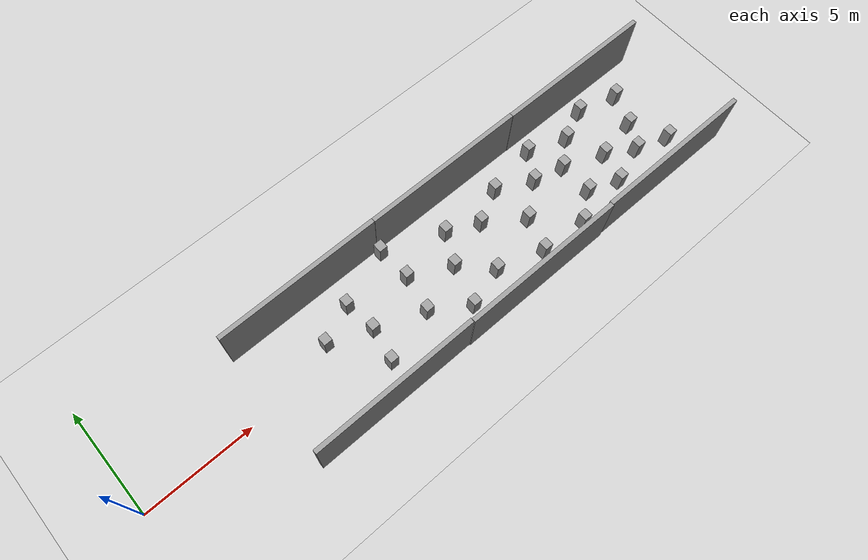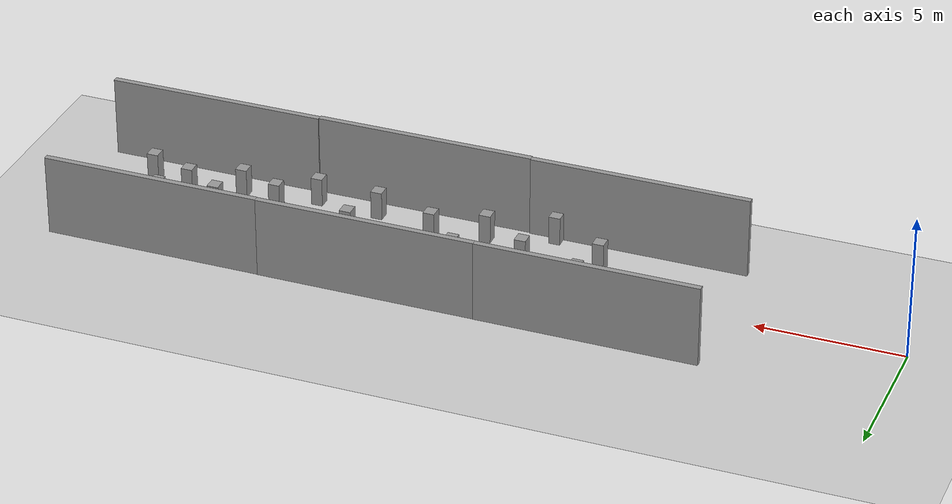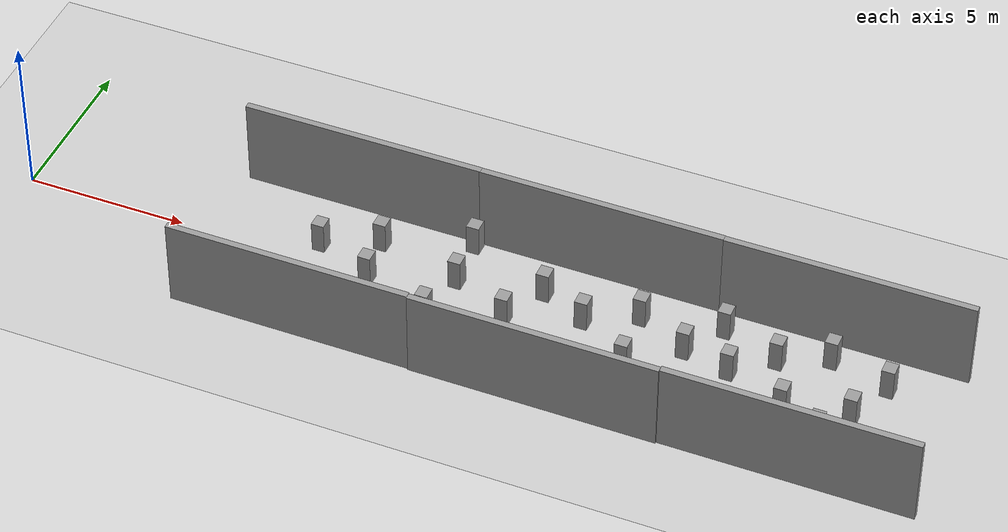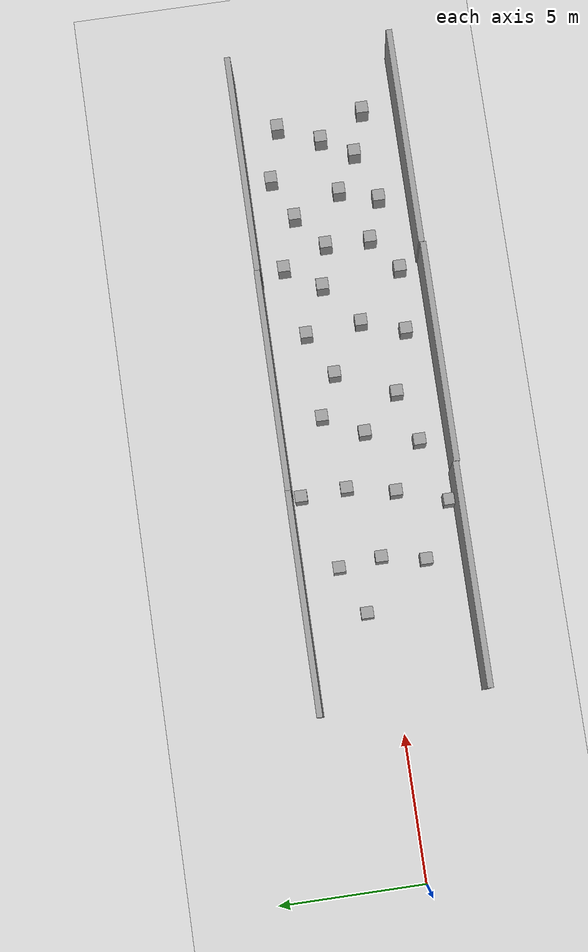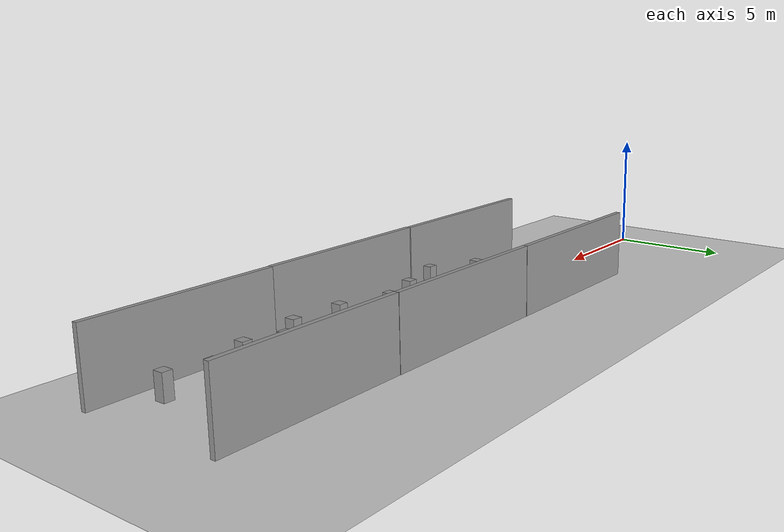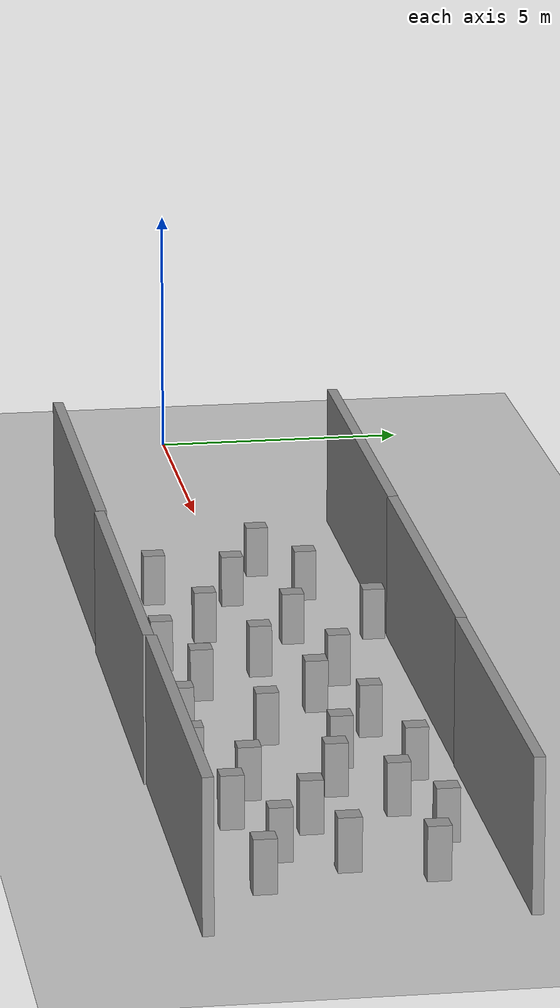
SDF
<sdf version="1.10">
 <world name="obstacle_corridor">
  <model name="ground_plane">
   <static>true</static>
   <link name="link">
    <collision name="collision">
     <geometry><plane><normal>0 0 1</normal><size>100 100</size></plane></geometry>
     <surface>
      <friction><ode><mu>1000</mu><mu2>1000</mu2><slip1>0</slip1><slip2>0</slip2></ode></friction>
     </surface>
    </collision>
    <visual name="visual">
     <cast_shadows>false</cast_shadows>
     <geometry><plane><normal>0 0 1</normal><size>100 100</size></plane></geometry>
     <material>
      <script><uri>file://media/materials/scripts/gazebo.material</uri><name>Gazebo/Grey</name></script>
     </material>
    </visual>
    <inertial>
     <mass>1</mass>
     <inertia><ixx>1</ixx><ixy>0</ixy><ixz>0</ixz><iyy>1</iyy><iyz>0</iyz><izz>1</izz></inertia>
    </inertial>
   </link>
  </model>
  <model name="grey_wall">
   <static>true</static>
   <link name="link">
    <pose>0 0 1.3999999999999999 0 0 0</pose>
    <collision name="collision">
     <geometry><box><size>7.5 0.20000000000000001 2.7999999999999998</size></box></geometry>
    </collision>
    <visual name="visual">
     <cast_shadows>false</cast_shadows>
     <geometry><box><size>7.5 0.20000000000000001 2.7999999999999998</size></box></geometry>
     <material>
      <script><name>Gazebo/Grey</name><uri>file://media/materials/scripts/gazebo.material</uri></script>
     </material>
    </visual>
    <velocity_decay><linear>0</linear><angular>0</angular></velocity_decay>
    <inertial>
     <mass>1</mass>
     <inertia><ixx>1</ixx><ixy>0</ixy><ixz>0</ixz><iyy>1</iyy><iyz>0</iyz><izz>1</izz></inertia>
    </inertial>
   </link>
   <pose>17.187099456787109 2.7045242786407471 0 0 0 0</pose>
   <static>true</static>
  </model>
  <model name="grey_wall_0">
   <static>true</static>
   <link name="link">
    <pose>0 0 1.3999999999999999 0 0 0</pose>
    <collision name="collision">
     <geometry><box><size>7.5 0.20000000000000001 2.7999999999999998</size></box></geometry>
    </collision>
    <visual name="visual">
     <cast_shadows>false</cast_shadows>
     <geometry><box><size>7.5 0.20000000000000001 2.7999999999999998</size></box></geometry>
     <material>
      <script><name>Gazebo/Grey</name><uri>file://media/materials/scripts/gazebo.material</uri></script>
     </material>
    </visual>
    <velocity_decay><linear>0</linear><angular>0</angular></velocity_decay>
    <inertial>
     <mass>1</mass>
     <inertia><ixx>1</ixx><ixy>0</ixy><ixz>0</ixz><iyy>1</iyy><iyz>0</iyz><izz>1</izz></inertia>
    </inertial>
   </link>
   <pose>17.363399505615234 -2.9447300434112549 0 0 0 0</pose>
   <static>true</static>
  </model>
  <model name="grey_wall_clone_1">
   <static>true</static>
   <link name="link">
    <pose>0 0 1.3999999999999999 0 0 0</pose>
    <collision name="collision">
     <geometry><box><size>7.5 0.20000000000000001 2.7999999999999998</size></box></geometry>
    </collision>
    <visual name="visual">
     <cast_shadows>false</cast_shadows>
     <geometry><box><size>7.5 0.20000000000000001 2.7999999999999998</size></box></geometry>
     <material>
      <script><name>Gazebo/Grey</name><uri>file://media/materials/scripts/gazebo.material</uri></script>
     </material>
    </visual>
    <velocity_decay><linear>0</linear><angular>0</angular></velocity_decay>
    <inertial>
     <mass>1</mass>
     <inertia><ixx>1</ixx><ixy>0</ixy><ixz>0</ixz><iyy>1</iyy><iyz>0</iyz><izz>1</izz></inertia>
    </inertial>
   </link>
   <pose>9.8578472137451172 -2.9056301116943359 0 0 0 0</pose>
   <static>true</static>
  </model>
  <model name="grey_wall_clone_2">
   <static>true</static>
   <link name="link">
    <pose>0 0 1.3999999999999999 0 0 0</pose>
    <collision name="collision">
     <geometry><box><size>7.5 0.20000000000000001 2.7999999999999998</size></box></geometry>
    </collision>
    <visual name="visual">
     <cast_shadows>false</cast_shadows>
     <geometry><box><size>7.5 0.20000000000000001 2.7999999999999998</size></box></geometry>
     <material>
      <script><name>Gazebo/Grey</name><uri>file://media/materials/scripts/gazebo.material</uri></script>
     </material>
    </visual>
    <velocity_decay><linear>0</linear><angular>0</angular></velocity_decay>
    <inertial>
     <mass>1</mass>
     <inertia><ixx>1</ixx><ixy>0</ixy><ixz>0</ixz><iyy>1</iyy><iyz>0</iyz><izz>1</izz></inertia>
    </inertial>
   </link>
   <pose>9.7113351821899414 2.7117300033569336 0 0 0 0</pose>
   <static>true</static>
  </model>
  <model name="grey_wall_clone_3">
   <static>true</static>
   <link name="link">
    <pose>0 0 1.3999999999999999 0 0 0</pose>
    <collision name="collision">
     <geometry><box><size>7.5 0.20000000000000001 2.7999999999999998</size></box></geometry>
    </collision>
    <visual name="visual">
     <cast_shadows>false</cast_shadows>
     <geometry><box><size>7.5 0.20000000000000001 2.7999999999999998</size></box></geometry>
     <material>
      <script><name>Gazebo/Grey</name><uri>file://media/materials/scripts/gazebo.material</uri></script>
     </material>
    </visual>
    <velocity_decay><linear>0</linear><angular>0</angular></velocity_decay>
    <inertial>
     <mass>1</mass>
     <inertia><ixx>1</ixx><ixy>0</ixy><ixz>0</ixz><iyy>1</iyy><iyz>0</iyz><izz>1</izz></inertia>
    </inertial>
   </link>
   <pose>24.683599472045898 2.6915173530578613 0 0 0 0</pose>
   <static>true</static>
  </model>
  <model name="grey_wall_clone_4">
   <static>true</static>
   <link name="link">
    <pose>0 0 1.3999999999999999 0 0 0</pose>
    <collision name="collision">
     <geometry><box><size>7.5 0.20000000000000001 2.7999999999999998</size></box></geometry>
    </collision>
    <visual name="visual">
     <cast_shadows>false</cast_shadows>
     <geometry><box><size>7.5 0.20000000000000001 2.7999999999999998</size></box></geometry>
     <material>
      <script><name>Gazebo/Grey</name><uri>file://media/materials/scripts/gazebo.material</uri></script>
     </material>
    </visual>
    <velocity_decay><linear>0</linear><angular>0</angular></velocity_decay>
    <inertial>
     <mass>1</mass>
     <inertia><ixx>1</ixx><ixy>0</ixy><ixz>0</ixz><iyy>1</iyy><iyz>0</iyz><izz>1</izz></inertia>
    </inertial>
   </link>
   <pose>24.86754035949707 -2.9010400772094727 0 0 0 0</pose>
   <static>true</static>
  </model>
  <model name="unit_box_0_clone_3">
   <static>true</static>
   <pose>9.2073688507080043 0.6758156418800354 0.50000137090682983 -3.0000009789918248e-06 -4.000000824194933e-06 -0.00054700010822561864</pose>
   <link name="link">
    <inertial>
     <mass>1</mass>
     <inertia>
      <ixx>0.16666700000000001</ixx>
      <ixy>0</ixy>
      <ixz>0</ixz>
      <iyy>0.16666700000000001</iyy>
      <iyz>0</iyz>
      <izz>0.16666700000000001</izz>
     </inertia>
    </inertial>
    <collision name="collision">
     <geometry><box><size>0.392878 0.42264299999999999 1</size></box></geometry>
    </collision>
    <visual name="visual">
     <geometry><box><size>0.392878 0.42264299999999999 1</size></box></geometry>
     <material>
      <script><name>Gazebo/Grey</name><uri>file://media/materials/scripts/gazebo.material</uri></script>
     </material>
    </visual>
   </link>
   <static>true</static>
  </model>
  <model name="unit_box_0_clone_5_clone_2_clone">
   <static>true</static>
   <pose>10.729900000000001 -1.5690999999999999 0.50000100000000003 2.0000003900787764e-06 1.0000001952259307e-06 -0.00076500014923367875</pose>
   <link name="link">
    <inertial>
     <mass>1</mass>
     <inertia>
      <ixx>0.16666700000000001</ixx>
      <ixy>0</ixy>
      <ixz>0</ixz>
      <iyy>0.16666700000000001</iyy>
      <iyz>0</iyz>
      <izz>0.16666700000000001</izz>
     </inertia>
    </inertial>
    <collision name="collision">
     <geometry><box><size>0.392878 0.42264299999999999 1</size></box></geometry>
    </collision>
    <visual name="visual">
     <geometry><box><size>0.392878 0.42264299999999999 1</size></box></geometry>
     <material>
      <script><name>Gazebo/Grey</name><uri>file://media/materials/scripts/gazebo.material</uri></script>
     </material>
    </visual>
   </link>
   <static>true</static>
  </model>
  <model name="unit_box_0_clone_5_clone_2_clone_0">
   <static>true</static>
   <pose>13.505867958068848 0.75421446561813354 0.50000911951065075 -5.0000012668553429e-06 -2.0000004055770497e-06 -0.00078500017208024393</pose>
   <link name="link">
    <inertial>
     <mass>1</mass>
     <inertia>
      <ixx>0.16666700000000001</ixx>
      <ixy>0</ixy>
      <ixz>0</ixz>
      <iyy>0.16666700000000001</iyy>
      <iyz>0</iyz>
      <izz>0.16666700000000001</izz>
     </inertia>
    </inertial>
    <collision name="collision">
     <geometry><box><size>0.392878 0.42264299999999999 1</size></box></geometry>
    </collision>
    <visual name="visual">
     <geometry><box><size>0.392878 0.42264299999999999 1</size></box></geometry>
     <material>
      <script><name>Gazebo/Grey</name><uri>file://media/materials/scripts/gazebo.material</uri></script>
     </material>
    </visual>
   </link>
   <static>true</static>
  </model>
  <model name="unit_box_0_clone_5_clone_2_clone_4">
   <static>true</static>
   <pose>11.022399999999999 -0.071739999999999998 0.50000100000000003 2.000000379810199e-06 3.0000005701815457e-06 -0.0007550001434595907</pose>
   <link name="link">
    <inertial>
     <mass>1</mass>
     <inertia>
      <ixx>0.16666700000000001</ixx>
      <ixy>0</ixy>
      <ixz>0</ixz>
      <iyy>0.16666700000000001</iyy>
      <iyz>0</iyz>
      <izz>0.16666700000000001</izz>
     </inertia>
    </inertial>
    <collision name="collision">
     <geometry><box><size>0.392878 0.42264299999999999 1</size></box></geometry>
    </collision>
    <visual name="visual">
     <geometry><box><size>0.392878 0.42264299999999999 1</size></box></geometry>
     <material>
      <script><name>Gazebo/Grey</name><uri>file://media/materials/scripts/gazebo.material</uri></script>
     </material>
    </visual>
   </link>
   <static>true</static>
  </model>
  <model name="unit_box_0_clone_5_clone_2_clone_5">
   <static>true</static>
   <pose>12.612545013427731 -2.6441345214843754 0.50000119209289551 -2.0000002923725765e-06 1.0000001559271868e-06 -0.00063200007067366296</pose>
   <link name="link">
    <inertial>
     <mass>1</mass>
     <inertia>
      <ixx>0.16666700000000001</ixx>
      <ixy>0</ixy>
      <ixz>0</ixz>
      <iyy>0.16666700000000001</iyy>
      <iyz>0</iyz>
      <izz>0.16666700000000001</izz>
     </inertia>
    </inertial>
    <collision name="collision">
     <geometry><box><size>0.392878 0.42264299999999999 1</size></box></geometry>
    </collision>
    <visual name="visual">
     <geometry><box><size>0.392878 0.42264299999999999 1</size></box></geometry>
     <material>
      <script><name>Gazebo/Grey</name><uri>file://media/materials/scripts/gazebo.material</uri></script>
     </material>
    </visual>
   </link>
   <static>true</static>
  </model>
  <model name="unit_box_0_clone_5_clone_2_clone_6">
   <static>true</static>
   <pose>13.1767 -0.89563199999999998 0.5 -1.000000126564928e-06 2.0000002529350668e-06 -0.00061600007791600168</pose>
   <link name="link">
    <inertial>
     <mass>1</mass>
     <inertia>
      <ixx>0.16666700000000001</ixx>
      <ixy>0</ixy>
      <ixz>0</ixz>
      <iyy>0.16666700000000001</iyy>
      <iyz>0</iyz>
      <izz>0.16666700000000001</izz>
     </inertia>
    </inertial>
    <collision name="collision">
     <geometry><box><size>0.392878 0.42264299999999999 1</size></box></geometry>
    </collision>
    <visual name="visual">
     <geometry><box><size>0.392878 0.42264299999999999 1</size></box></geometry>
     <material>
      <script><name>Gazebo/Grey</name><uri>file://media/materials/scripts/gazebo.material</uri></script>
     </material>
    </visual>
   </link>
   <static>true</static>
  </model>
  <model name="unit_box_0_clone_5_clone_1_clone">
   <static>true</static>
   <pose>14.789099999999999 -1.94096 0.50000100000000003 1.0000000399208095e-06 -2.0000000798071012e-06 -0.00034600001380782295</pose>
   <link name="link">
    <inertial>
     <mass>1</mass>
     <inertia>
      <ixx>0.16666700000000001</ixx>
      <ixy>0</ixy>
      <ixz>0</ixz>
      <iyy>0.16666700000000001</iyy>
      <iyz>0</iyz>
      <izz>0.16666700000000001</izz>
     </inertia>
    </inertial>
    <collision name="collision">
     <geometry><box><size>0.392878 0.42264299999999999 1</size></box></geometry>
    </collision>
    <visual name="visual">
     <geometry><box><size>0.392878 0.42264299999999999 1</size></box></geometry>
     <material>
      <script><name>Gazebo/Grey</name><uri>file://media/materials/scripts/gazebo.material</uri></script>
     </material>
    </visual>
   </link>
   <static>true</static>
  </model>
  <model name="unit_box_0_clone_5_clone_1_clone_0">
   <static>true</static>
   <pose>15.339099884033203 -0.13711300492286682 0.50000101327896118 -9.9999995084638834e-07 3.0000000458730671e-06 -0.00034299999056368454</pose>
   <link name="link">
    <inertial>
     <mass>1</mass>
     <inertia>
      <ixx>0.16666700000000001</ixx>
      <ixy>0</ixy>
      <ixz>0</ixz>
      <iyy>0.16666700000000001</iyy>
      <iyz>0</iyz>
      <izz>0.16666700000000001</izz>
     </inertia>
    </inertial>
    <collision name="collision">
     <geometry><box><size>0.392878 0.42264299999999999 1</size></box></geometry>
    </collision>
    <visual name="visual">
     <geometry><box><size>0.392878 0.42264299999999999 1</size></box></geometry>
     <material>
      <script><name>Gazebo/Grey</name><uri>file://media/materials/scripts/gazebo.material</uri></script>
     </material>
    </visual>
   </link>
   <static>true</static>
  </model>
  <model name="unit_box_0_clone_5_clone_1_clone_1">
   <static>true</static>
   <pose>16.0654 1.24238 0.50000100000000003 -2.0000000699866681e-06 -1.1337840556560594e-17 -0.0003240000113378403</pose>
   <link name="link">
    <inertial>
     <mass>1</mass>
     <inertia>
      <ixx>0.16666700000000001</ixx>
      <ixy>0</ixy>
      <ixz>0</ixz>
      <iyy>0.16666700000000001</iyy>
      <iyz>0</iyz>
      <izz>0.16666700000000001</izz>
     </inertia>
    </inertial>
    <collision name="collision">
     <geometry><box><size>0.392878 0.42264299999999999 1</size></box></geometry>
    </collision>
    <visual name="visual">
     <geometry><box><size>0.392878 0.42264299999999999 1</size></box></geometry>
     <material>
      <script><name>Gazebo/Grey</name><uri>file://media/materials/scripts/gazebo.material</uri></script>
     </material>
    </visual>
   </link>
   <static>true</static>
  </model>
  <model name="unit_box_0_clone_5_clone_1_clone_3">
   <static>true</static>
   <pose>17.505437850952148 0.59749346971511841 0.4999997615814209 5.8466378305452428e-17 2.9999998787366496e-06 -0.00030799998541884862</pose>
   <link name="link">
    <inertial>
     <mass>1</mass>
     <inertia>
      <ixx>0.16666700000000001</ixx>
      <ixy>0</ixy>
      <ixz>0</ixz>
      <iyy>0.16666700000000001</iyy>
      <iyz>0</iyz>
      <izz>0.16666700000000001</izz>
     </inertia>
    </inertial>
    <collision name="collision">
     <geometry><box><size>0.392878 0.42264299999999999 1</size></box></geometry>
    </collision>
    <visual name="visual">
     <geometry><box><size>0.392878 0.42264299999999999 1</size></box></geometry>
     <material>
      <script><name>Gazebo/Grey</name><uri>file://media/materials/scripts/gazebo.material</uri></script>
     </material>
    </visual>
   </link>
   <static>true</static>
  </model>
  <model name="unit_box_0_clone_5_clone_1_clone_4">
   <static>true</static>
   <pose>18.672418594360352 -2.0511386394500732 0.49998795986175537 4.9999997545680128e-06 3.0000000014266035e-06 -0.00029899999690716732</pose>
   <link name="link">
    <inertial>
     <mass>1</mass>
     <inertia>
      <ixx>0.16666700000000001</ixx>
      <ixy>0</ixy>
      <ixz>0</ixz>
      <iyy>0.16666700000000001</iyy>
      <iyz>0</iyz>
      <izz>0.16666700000000001</izz>
     </inertia>
    </inertial>
    <collision name="collision">
     <geometry><box><size>0.392878 0.42264299999999999 1</size></box></geometry>
    </collision>
    <visual name="visual">
     <geometry><box><size>0.392878 0.42264299999999999 1</size></box></geometry>
     <material>
      <script><name>Gazebo/Grey</name><uri>file://media/materials/scripts/gazebo.material</uri></script>
     </material>
    </visual>
   </link>
   <static>true</static>
  </model>
  <model name="unit_box_0_clone_5_clone_1_clone_5">
   <static>true</static>
   <pose>16.557600021362305 -1.4180713891983032 0.49999698996543884 -3.0000000344854799e-06 -2.9999999503741765e-06 -0.00030199999357909124</pose>
   <link name="link">
    <inertial>
     <mass>1</mass>
     <inertia>
      <ixx>0.16666700000000001</ixx>
      <ixy>0</ixy>
      <ixz>0</ixz>
      <iyy>0.16666700000000001</iyy>
      <iyz>0</iyz>
      <izz>0.16666700000000001</izz>
     </inertia>
    </inertial>
    <collision name="collision">
     <geometry><box><size>0.392878 0.42264299999999999 1</size></box></geometry>
    </collision>
    <visual name="visual">
     <geometry><box><size>0.392878 0.42264299999999999 1</size></box></geometry>
     <material>
      <script><name>Gazebo/Grey</name><uri>file://media/materials/scripts/gazebo.material</uri></script>
     </material>
    </visual>
   </link>
   <static>true</static>
  </model>
  <model name="unit_box_0_clone_5_clone_1_clone_13">
   <static>true</static>
   <pose>20.613299999999999 0.571052 0.49999900000000003 3.0000000882307389e-06 -2.0000000588015679e-06 -0.00029700000873397866</pose>
   <link name="link">
    <inertial>
     <mass>1</mass>
     <inertia>
      <ixx>0.16666700000000001</ixx>
      <ixy>0</ixy>
      <ixz>0</ixz>
      <iyy>0.16666700000000001</iyy>
      <iyz>0</iyz>
      <izz>0.16666700000000001</izz>
     </inertia>
    </inertial>
    <collision name="collision">
     <geometry><box><size>0.392878 0.42264299999999999 1</size></box></geometry>
    </collision>
    <visual name="visual">
     <geometry><box><size>0.392878 0.42264299999999999 1</size></box></geometry>
     <material>
      <script><name>Gazebo/Grey</name><uri>file://media/materials/scripts/gazebo.material</uri></script>
     </material>
    </visual>
   </link>
   <static>true</static>
  </model>
  <model name="unit_box_0_clone_5_clone_1_clone_15">
   <static>true</static>
   <pose>19.173300000000001 -0.56108100000000005 0.5 1.0000000272698996e-06 -1.0000000272621026e-06 -0.00028600000779807643</pose>
   <link name="link">
    <inertial>
     <mass>1</mass>
     <inertia>
      <ixx>0.16666700000000001</ixx>
      <ixy>0</ixy>
      <ixz>0</ixz>
      <iyy>0.16666700000000001</iyy>
      <iyz>0</iyz>
      <izz>0.16666700000000001</izz>
     </inertia>
    </inertial>
    <collision name="collision">
     <geometry><box><size>0.392878 0.42264299999999999 1</size></box></geometry>
    </collision>
    <visual name="visual">
     <geometry><box><size>0.392878 0.42264299999999999 1</size></box></geometry>
     <material>
      <script><name>Gazebo/Grey</name><uri>file://media/materials/scripts/gazebo.material</uri></script>
     </material>
    </visual>
   </link>
   <static>true</static>
  </model>
  <model name="unit_box_0_clone_5_clone_1_clone_17">
   <static>true</static>
   <pose>20.865400000000001 -2.1651899999999999 0.50000100000000003 -1.0000000326682239e-06 2.000000065310892e-06 -0.00031300001022195459</pose>
   <link name="link">
    <inertial>
     <mass>1</mass>
     <inertia>
      <ixx>0.16666700000000001</ixx>
      <ixy>0</ixy>
      <ixz>0</ixz>
      <iyy>0.16666700000000001</iyy>
      <iyz>0</iyz>
      <izz>0.16666700000000001</izz>
     </inertia>
    </inertial>
    <collision name="collision">
     <geometry><box><size>0.392878 0.42264299999999999 1</size></box></geometry>
    </collision>
    <visual name="visual">
     <geometry><box><size>0.392878 0.42264299999999999 1</size></box></geometry>
     <material>
      <script><name>Gazebo/Grey</name><uri>file://media/materials/scripts/gazebo.material</uri></script>
     </material>
    </visual>
   </link>
   <static>true</static>
  </model>
  <model name="unit_box_0_clone_5_clone_1_clone_18">
   <static>true</static>
   <pose>22.041599999999999 -1.2972999999999999 0.49999900000000003 3.0000000986416438e-06 -4.0000001314791856e-06 -0.00031400001032233157</pose>
   <link name="link">
    <inertial>
     <mass>1</mass>
     <inertia>
      <ixx>0.16666700000000001</ixx>
      <ixy>0</ixy>
      <ixz>0</ixz>
      <iyy>0.16666700000000001</iyy>
      <iyz>0</iyz>
      <izz>0.16666700000000001</izz>
     </inertia>
    </inertial>
    <collision name="collision">
     <geometry><box><size>0.392878 0.42264299999999999 1</size></box></geometry>
    </collision>
    <visual name="visual">
     <geometry><box><size>0.392878 0.42264299999999999 1</size></box></geometry>
     <material>
      <script><name>Gazebo/Grey</name><uri>file://media/materials/scripts/gazebo.material</uri></script>
     </material>
    </visual>
   </link>
   <static>true</static>
  </model>
  <model name="unit_box_0_clone_5_clone_1_clone_19">
   <static>true</static>
   <pose>22.0564 0.25375799999999998 0.50000100000000003 1.0000000304121832e-06 -2.0000000608014127e-06 -0.00030200000918170663</pose>
   <link name="link">
    <inertial>
     <mass>1</mass>
     <inertia>
      <ixx>0.16666700000000001</ixx>
      <ixy>0</ixy>
      <ixz>0</ixz>
      <iyy>0.16666700000000001</iyy>
      <iyz>0</iyz>
      <izz>0.16666700000000001</izz>
     </inertia>
    </inertial>
    <collision name="collision">
     <geometry><box><size>0.392878 0.42264299999999999 1</size></box></geometry>
    </collision>
    <visual name="visual">
     <geometry><box><size>0.392878 0.42264299999999999 1</size></box></geometry>
     <material>
      <script><name>Gazebo/Grey</name><uri>file://media/materials/scripts/gazebo.material</uri></script>
     </material>
    </visual>
   </link>
   <static>true</static>
  </model>
  <model name="unit_box_0_clone_5_clone_1_clone_20">
   <static>true</static>
   <pose>21.416 1.80481 0.50000100000000003 2.0000000721633365e-06 1.1870869022447288e-17 -0.00032900001187086847</pose>
   <link name="link">
    <inertial>
     <mass>1</mass>
     <inertia>
      <ixx>0.16666700000000001</ixx>
      <ixy>0</ixy>
      <ixz>0</ixz>
      <iyy>0.16666700000000001</iyy>
      <iyz>0</iyz>
      <izz>0.16666700000000001</izz>
     </inertia>
    </inertial>
    <collision name="collision">
     <geometry><box><size>0.392878 0.42264299999999999 1</size></box></geometry>
    </collision>
    <visual name="visual">
     <geometry><box><size>0.392878 0.42264299999999999 1</size></box></geometry>
     <material>
      <script><name>Gazebo/Grey</name><uri>file://media/materials/scripts/gazebo.material</uri></script>
     </material>
    </visual>
   </link>
   <static>true</static>
  </model>
  <model name="unit_box_0_clone_5_clone_1_clone_21">
   <static>true</static>
   <pose>24.621854782104496 1.8092082738876343 0.49999374151229853 2.0000000438857273e-06 3.0000000694810451e-06 -0.00034400001739738048</pose>
   <link name="link">
    <inertial>
     <mass>1</mass>
     <inertia>
      <ixx>0.16666700000000001</ixx>
      <ixy>0</ixy>
      <ixz>0</ixz>
      <iyy>0.16666700000000001</iyy>
      <iyz>0</iyz>
      <izz>0.16666700000000001</izz>
     </inertia>
    </inertial>
    <collision name="collision">
     <geometry><box><size>0.392878 0.42264299999999999 1</size></box></geometry>
    </collision>
    <visual name="visual">
     <geometry><box><size>0.392878 0.42264299999999999 1</size></box></geometry>
     <material>
      <script><name>Gazebo/Grey</name><uri>file://media/materials/scripts/gazebo.material</uri></script>
     </material>
    </visual>
   </link>
   <static>true</static>
  </model>
  <model name="unit_box_0_clone_5_clone_1_clone_22">
   <static>true</static>
   <pose>23.1966 1.1816 0.49999900000000003 4.0000001689921149e-06 3.0000001267910969e-06 -0.00035600001504230646</pose>
   <link name="link">
    <inertial>
     <mass>1</mass>
     <inertia>
      <ixx>0.16666700000000001</ixx>
      <ixy>0</ixy>
      <ixz>0</ixz>
      <iyy>0.16666700000000001</iyy>
      <iyz>0</iyz>
      <izz>0.16666700000000001</izz>
     </inertia>
    </inertial>
    <collision name="collision">
     <geometry><box><size>0.392878 0.42264299999999999 1</size></box></geometry>
    </collision>
    <visual name="visual">
     <geometry><box><size>0.392878 0.42264299999999999 1</size></box></geometry>
     <material>
      <script><name>Gazebo/Grey</name><uri>file://media/materials/scripts/gazebo.material</uri></script>
     </material>
    </visual>
   </link>
   <static>true</static>
  </model>
  <model name="unit_box_0_clone_5_clone_1_clone_23">
   <static>true</static>
   <pose>23.892900000000001 -0.47172799999999998 0.50000100000000003 -2.5123366551819107e-17 3.0000001361700022e-06 -0.00036900001674891061</pose>
   <link name="link">
    <inertial>
     <mass>1</mass>
     <inertia>
      <ixx>0.16666700000000001</ixx>
      <ixy>0</ixy>
      <ixz>0</ixz>
      <iyy>0.16666700000000001</iyy>
      <iyz>0</iyz>
      <izz>0.16666700000000001</izz>
     </inertia>
    </inertial>
    <collision name="collision">
     <geometry><box><size>0.392878 0.42264299999999999 1</size></box></geometry>
    </collision>
    <visual name="visual">
     <geometry><box><size>0.392878 0.42264299999999999 1</size></box></geometry>
     <material>
      <script><name>Gazebo/Grey</name><uri>file://media/materials/scripts/gazebo.material</uri></script>
     </material>
    </visual>
   </link>
   <static>true</static>
  </model>
  <model name="unit_box_0_clone_5_clone_1_clone_25">
   <static>true</static>
   <pose>23.4528 -1.8048 0.50000100000000003 -1.0000000496478322e-06 -2.0000000993435921e-06 -0.00038600001917146319</pose>
   <link name="link">
    <inertial>
     <mass>1</mass>
     <inertia>
      <ixx>0.16666700000000001</ixx>
      <ixy>0</ixy>
      <ixz>0</ixz>
      <iyy>0.16666700000000001</iyy>
      <iyz>0</iyz>
      <izz>0.16666700000000001</izz>
     </inertia>
    </inertial>
    <collision name="collision">
     <geometry><box><size>0.392878 0.42264299999999999 1</size></box></geometry>
    </collision>
    <visual name="visual">
     <geometry><box><size>0.392878 0.42264299999999999 1</size></box></geometry>
     <material>
      <script><name>Gazebo/Grey</name><uri>file://media/materials/scripts/gazebo.material</uri></script>
     </material>
    </visual>
   </link>
   <static>true</static>
  </model>
  <model name="unit_box_0_clone_5_clone_1_clone_26">
   <static>true</static>
   <pose>25.177 -1.20103 0.49999900000000003 4.0000002101473951e-06 3.000000157675735e-06 -0.0003970000208602339</pose>
   <link name="link">
    <inertial>
     <mass>1</mass>
     <inertia>
      <ixx>0.16666700000000001</ixx>
      <ixy>0</ixy>
      <ixz>0</ixz>
      <iyy>0.16666700000000001</iyy>
      <iyz>0</iyz>
      <izz>0.16666700000000001</izz>
     </inertia>
    </inertial>
    <collision name="collision">
     <geometry><box><size>0.392878 0.42264299999999999 1</size></box></geometry>
    </collision>
    <visual name="visual">
     <geometry><box><size>0.392878 0.42264299999999999 1</size></box></geometry>
     <material>
      <script><name>Gazebo/Grey</name><uri>file://media/materials/scripts/gazebo.material</uri></script>
     </material>
    </visual>
   </link>
   <static>true</static>
  </model>
  <model name="unit_box_0_clone_5_clone_1_clone_27">
   <static>true</static>
   <pose>25.828499999999998 -0.10569000000000001 0.49999900000000003 4.000000211270194e-06 -3.0000001583869674e-06 -0.00039800002101824826</pose>
   <link name="link">
    <inertial>
     <mass>1</mass>
     <inertia>
      <ixx>0.16666700000000001</ixx>
      <ixy>0</ixy>
      <ixz>0</ixz>
      <iyy>0.16666700000000001</iyy>
      <iyz>0</iyz>
      <izz>0.16666700000000001</izz>
     </inertia>
    </inertial>
    <collision name="collision">
     <geometry><box><size>0.392878 0.42264299999999999 1</size></box></geometry>
    </collision>
    <visual name="visual">
     <geometry><box><size>0.392878 0.42264299999999999 1</size></box></geometry>
     <material>
      <script><name>Gazebo/Grey</name><uri>file://media/materials/scripts/gazebo.material</uri></script>
     </material>
    </visual>
   </link>
   <static>true</static>
  </model>
  <model name="unit_box_0_clone_5_clone_1_clone_28">
   <static>true</static>
   <pose>26.6584 -1.6870499999999999 0.50000100000000003 1.0000000532963307e-06 4.0000002133666853e-06 -0.00040000002133560144</pose>
   <link name="link">
    <inertial>
     <mass>1</mass>
     <inertia>
      <ixx>0.16666700000000001</ixx>
      <ixy>0</ixy>
      <ixz>0</ixz>
      <iyy>0.16666700000000001</iyy>
      <iyz>0</iyz>
      <izz>0.16666700000000001</izz>
     </inertia>
    </inertial>
    <collision name="collision">
     <geometry><box><size>0.392878 0.42264299999999999 1</size></box></geometry>
    </collision>
    <visual name="visual">
     <geometry><box><size>0.392878 0.42264299999999999 1</size></box></geometry>
     <material>
      <script><name>Gazebo/Grey</name><uri>file://media/materials/scripts/gazebo.material</uri></script>
     </material>
    </visual>
   </link>
   <static>true</static>
  </model>
  <model name="unit_box_0_clone_5_clone_1_clone_32">
   <static>true</static>
   <pose>26.451899999999998 1.3352999999999999 0.50000100000000003 -3.0000002016100097e-06 -4.526145141597062e-17 -0.00044900003017429852</pose>
   <link name="link">
    <inertial>
     <mass>1</mass>
     <inertia>
      <ixx>0.16666700000000001</ixx>
      <ixy>0</ixy>
      <ixz>0</ixz>
      <iyy>0.16666700000000001</iyy>
      <iyz>0</iyz>
      <izz>0.16666700000000001</izz>
     </inertia>
    </inertial>
    <collision name="collision">
     <geometry><box><size>0.392878 0.42264299999999999 1</size></box></geometry>
    </collision>
    <visual name="visual">
     <geometry><box><size>0.392878 0.42264299999999999 1</size></box></geometry>
     <material>
      <script><name>Gazebo/Grey</name><uri>file://media/materials/scripts/gazebo.material</uri></script>
     </material>
    </visual>
   </link>
   <static>true</static>
  </model>
  <model name="unit_box_0_clone_5_clone_2_clone_0_1">
   <static>true</static>
   <pose>13.42393684387207 2.3307790756225586 0.49999818205833435 -5.0000000656824342e-06 -1.9999999245609307e-06 -0.00078499998346648326</pose>
   <link name="link">
    <inertial>
     <mass>1</mass>
     <inertia>
      <ixx>0.16666700000000001</ixx>
      <ixy>0</ixy>
      <ixz>0</ixz>
      <iyy>0.16666700000000001</iyy>
      <iyz>0</iyz>
      <izz>0.16666700000000001</izz>
     </inertia>
    </inertial>
    <collision name="collision">
     <geometry><box><size>0.392878 0.42264299999999999 1</size></box></geometry>
    </collision>
    <visual name="visual">
     <geometry><box><size>0.392878 0.42264299999999999 1</size></box></geometry>
     <material>
      <script><name>Gazebo/Grey</name><uri>file://media/materials/scripts/gazebo.material</uri></script>
     </material>
    </visual>
   </link>
   <static>true</static>
  </model>
  <model name="unit_box_0_clone_5_clone_1_clone_15_1">
   <static>true</static>
   <pose>19.006626857855021 1.3632574952080083 0.5 1.0000000271555768e-06 -1.0000000632309049e-06 -0.00028600000715498132</pose>
   <link name="link">
    <inertial>
     <mass>1</mass>
     <inertia>
      <ixx>0.16666700000000001</ixx>
      <ixy>0</ixy>
      <ixz>0</ixz>
      <iyy>0.16666700000000001</iyy>
      <iyz>0</iyz>
      <izz>0.16666700000000001</izz>
     </inertia>
    </inertial>
    <collision name="collision">
     <geometry><box><size>0.392878 0.42264299999999999 1</size></box></geometry>
    </collision>
    <visual name="visual">
     <geometry><box><size>0.392878 0.42264299999999999 1</size></box></geometry>
     <material>
      <script><name>Gazebo/Grey</name><uri>file://media/materials/scripts/gazebo.material</uri></script>
     </material>
    </visual>
   </link>
   <static>true</static>
  </model>
  <model name="unit_box_0_clone_5_clone_1_clone_15_2">
   <static>true</static>
   <pose>10.860219596633021 1.3912514539267917 0.5 1.0000000271555768e-06 -1.0000000632309049e-06 -0.00028600000715498132</pose>
   <link name="link">
    <inertial>
     <mass>1</mass>
     <inertia>
      <ixx>0.16666700000000001</ixx>
      <ixy>0</ixy>
      <ixz>0</ixz>
      <iyy>0.16666700000000001</iyy>
      <iyz>0</iyz>
      <izz>0.16666700000000001</izz>
     </inertia>
    </inertial>
    <collision name="collision">
     <geometry><box><size>0.392878 0.42264299999999999 1</size></box></geometry>
    </collision>
    <visual name="visual">
     <geometry><box><size>0.392878 0.42264299999999999 1</size></box></geometry>
     <material>
      <script><name>Gazebo/Grey</name><uri>file://media/materials/scripts/gazebo.material</uri></script>
     </material>
    </visual>
   </link>
   <static>true</static>
  </model>
 </world>
</sdf>
